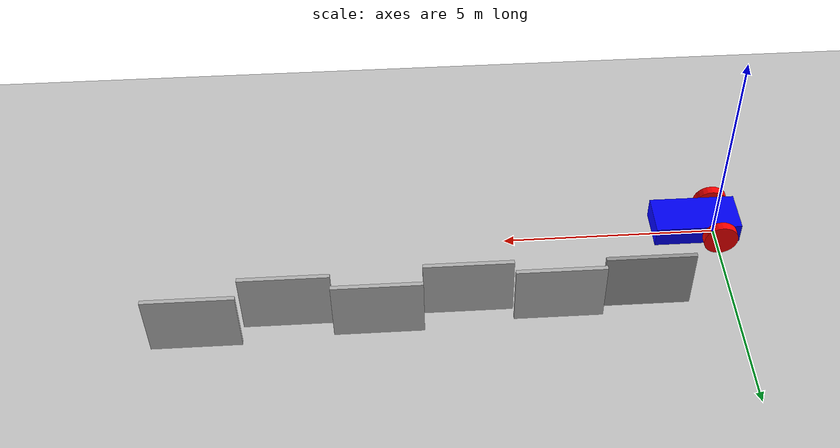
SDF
<?xml version="1.0" ?>
<sdf version="1.8">
    <world name="car_world">
        <physics name="1ms" type="ignored">
            <max_step_size>0.001</max_step_size>
            <real_time_factor>1.0</real_time_factor>
        </physics>
        <plugin
            filename="gz-sim-physics-system"
            name="gz::sim::systems::Physics">
        </plugin>
        <plugin
            filename="gz-sim-user-commands-system"
            name="gz::sim::systems::UserCommands">
        </plugin>
        <plugin
            filename="gz-sim-scene-broadcaster-system"
            name="gz::sim::systems::SceneBroadcaster">
        </plugin>

        <plugin
            filename="gz-sim-sensors-system"
            name="gz::sim::systems::Sensors">
        <render_engine>ogre2</render_engine>
        </plugin>

        <light type="directional" name="sun">
            <cast_shadows>true</cast_shadows>
            <pose>0 0 10 0 0 0</pose>
            <diffuse>0.8 0.8 0.8 1</diffuse>
            <specular>0.2 0.2 0.2 1</specular>
            <attenuation>
                <range>1000</range>
                <constant>0.9</constant>
                <linear>0.01</linear>
                <quadratic>0.001</quadratic>
            </attenuation>
            <direction>-0.5 0.1 -0.9</direction>
        </light>

        <model name="ground_plane">
            <static>true</static>
            <link name="link">
                <collision name="collision">
                <geometry>
                    <plane>
                    <normal>0 0 1</normal>
                    </plane>
                </geometry>
                </collision>
                <visual name="visual">
                <geometry>
                    <plane>
                    <normal>0 0 1</normal>
                    <size>100 100</size>
                    </plane>
                </geometry>
                <material>
                    <ambient>0.8 0.8 0.8 1</ambient>
                    <diffuse>0.8 0.8 0.8 1</diffuse>
                    <specular>0.8 0.8 0.8 1</specular>
                </material>
                </visual>
            </link>
        </model>

        <model name="side_wall">
  <static>true</static>

  <!-- A chain of short wall segments along X with varying Y -> not straight -->
  <!-- Each segment is a box: length in X, thickness in Y, height in Z -->

  <link name="seg_0">
    <pose>  2.0  2.10 0.75 0 0 0</pose>
    <collision name="col">
      <geometry><box><size>2.0 0.10 1.5</size></box></geometry>
    </collision>
    <visual name="vis">
      <geometry><box><size>2.0 0.10 1.5</size></box></geometry>
      <material>
        <ambient>0.6 0.6 0.6 1</ambient>
        <diffuse>0.6 0.6 0.6 1</diffuse>
      </material>
    </visual>
  </link>

  <link name="seg_1">
    <pose>  4.0  2.35 0.75 0 0 0</pose>
    <collision name="col">
      <geometry><box><size>2.0 0.10 1.5</size></box></geometry>
    </collision>
    <visual name="vis">
      <geometry><box><size>2.0 0.10 1.5</size></box></geometry>
    </visual>
  </link>

  <link name="seg_2">
    <pose>  6.0  2.05 0.75 0 0 0</pose>
    <collision name="col">
      <geometry><box><size>2.0 0.10 1.5</size></box></geometry>
    </collision>
    <visual name="vis">
      <geometry><box><size>2.0 0.10 1.5</size></box></geometry>
    </visual>
  </link>

  <link name="seg_3">
    <pose>  8.0  2.55 0.75 0 0 0</pose>
    <collision name="col">
      <geometry><box><size>2.0 0.10 1.5</size></box></geometry>
    </collision>
    <visual name="vis">
      <geometry><box><size>2.0 0.10 1.5</size></box></geometry>
    </visual>
  </link>

  <link name="seg_4">
    <pose> 10.0  2.20 0.75 0 0 0</pose>
    <collision name="col">
      <geometry><box><size>2.0 0.10 1.5</size></box></geometry>
    </collision>
    <visual name="vis">
      <geometry><box><size>2.0 0.10 1.5</size></box></geometry>
    </visual>
  </link>

  <link name="seg_5">
    <pose> 12.0  2.70 0.75 0 0 0</pose>
    <collision name="col">
      <geometry><box><size>2.0 0.10 1.5</size></box></geometry>
    </collision>
    <visual name="vis">
      <geometry><box><size>2.0 0.10 1.5</size></box></geometry>
    </visual>
  </link>

</model>

        <model name='vehicle_blue' canonical_link='chassis'>
            <pose relative_to='world'>0 0 0 0 0 0</pose>   <!--the pose is relative to the world by default-->

            <frame name="lidar_frame" attached_to='chassis'>
            <pose>0.8 0 0.5 0 0 1.5708</pose>
            </frame>

            <!--chassis-->
            <link name='chassis'>
                <pose relative_to='__model__'>0.5 0 0.4 0 0 0</pose>
                <inertial> <!--inertial properties of the link mass, inertia matix-->
                    <mass>1.14395</mass>
                    <inertia>
                        <ixx>0.095329</ixx>
                        <ixy>0</ixy>
                        <ixz>0</ixz>
                        <iyy>0.381317</iyy>
                        <iyz>0</iyz>
                        <izz>0.476646</izz>
                    </inertia>
                </inertial>
                <visual name='visual'>
                    <geometry>
                        <box>
                            <size>2.0 1.0 0.5</size>
                        </box>
                    </geometry>
                    <!--Color of the link-->
                    <material>
                        <ambient>0.0 0.0 1.0 1</ambient>
                        <diffuse>0.0 0.0 1.0 1</diffuse>
                        <specular>0.0 0.0 1.0 1</specular>
                    </material>
                </visual>
                <collision name='collision'>
                    <geometry>
                        <box>
                            <size>2.0 1.0 0.5</size>
                        </box>
                    </geometry>
                </collision>

                <sensor name='gpu_lidar' type='gpu_lidar'>
  <pose relative_to='lidar_frame'>0 0 0 0 0 0</pose>
  <topic>lidar</topic>
  <update_rate>10</update_rate>
  <ray>
    <scan>
      <horizontal>
        <samples>1</samples>
        <resolution>1</resolution>
        <min_angle>0</min_angle>
        <max_angle>0</max_angle>
      </horizontal>
      <vertical>
        <samples>1</samples>
        <resolution>0.01</resolution>
        <min_angle>0</min_angle>
        <max_angle>0</max_angle>
      </vertical>
    </scan>
    <range>
      <min>0.08</min>
      <max>10.0</max>
      <resolution>0.01</resolution>
    </range>
  </ray>
  <always_on>1</always_on>
  <visualize>true</visualize>
</sensor>

            </link>

            <!--Left wheel-->
            <link name='left_wheel'>
                <pose relative_to="chassis">-0.5 0.6 0 -1.5707 0 0</pose> <!--angles are in radian-->
                <inertial>
                    <mass>1</mass>
                    <inertia>
                        <ixx>0.043333</ixx>
                        <ixy>0</ixy>
                        <ixz>0</ixz>
                        <iyy>0.043333</iyy>
                        <iyz>0</iyz>
                        <izz>0.08</izz>
                    </inertia>
                </inertial>
                <visual name='visual'>
                    <geometry>
                        <cylinder>
                            <radius>0.4</radius>
                            <length>0.2</length>
                        </cylinder>
                    </geometry>
                    <material>
                        <ambient>1.0 0.0 0.0 1</ambient>
                        <diffuse>1.0 0.0 0.0 1</diffuse>
                        <specular>1.0 0.0 0.0 1</specular>
                    </material>
                </visual>
                <collision name='collision'>
                    <geometry>
                        <cylinder>
                            <radius>0.4</radius>
                            <length>0.2</length>
                        </cylinder>
                    </geometry>
                </collision>
            </link>

            <!--The same as left wheel but with different position-->
            <link name='right_wheel'>
                <pose relative_to="chassis">-0.5 -0.6 0 -1.5707 0 0</pose> <!--angles are in radian-->
                <inertial>
                    <mass>1</mass>
                    <inertia>
                        <ixx>0.043333</ixx>
                        <ixy>0</ixy>
                        <ixz>0</ixz>
                        <iyy>0.043333</iyy>
                        <iyz>0</iyz>
                        <izz>0.08</izz>
                    </inertia>
                </inertial>
                <visual name='visual'>
                    <geometry>
                        <cylinder>
                            <radius>0.4</radius>
                            <length>0.2</length>
                        </cylinder>
                    </geometry>
                    <material>
                        <ambient>1.0 0.0 0.0 1</ambient>
                        <diffuse>1.0 0.0 0.0 1</diffuse>
                        <specular>1.0 0.0 0.0 1</specular>
                    </material>
                </visual>
                <collision name='collision'>
                    <geometry>
                        <cylinder>
                            <radius>0.4</radius>
                            <length>0.2</length>
                        </cylinder>
                    </geometry>
                </collision>
            </link>

            <!--arbitrary frame-->
            <frame name="caster_frame" attached_to='chassis'>
                <pose>0.8 0 -0.2 0 0 0</pose>
            </frame>

            <!--caster wheel-->
            <link name='caster'>
                <pose relative_to='caster_frame'/>
                <inertial>
                    <mass>1</mass>
                    <inertia>
                        <ixx>0.016</ixx>
                        <ixy>0</ixy>
                        <ixz>0</ixz>
                        <iyy>0.016</iyy>
                        <iyz>0</iyz>
                        <izz>0.016</izz>
                    </inertia>
                </inertial>
                <visual name='visual'>
                    <geometry>
                        <sphere>
                            <radius>0.2</radius>
                        </sphere>
                    </geometry>
                    <material>
                        <ambient>0.0 1 0.0 1</ambient>
                        <diffuse>0.0 1 0.0 1</diffuse>
                        <specular>0.0 1 0.0 1</specular>
                    </material>
                </visual>
                <collision name='collision'>
                    <geometry>
                        <sphere>
                            <radius>0.2</radius>
                        </sphere>
                    </geometry>
                </collision>
            </link>

            <!--left wheel joint-->
            <joint name='left_wheel_joint' type='revolute'>
                <pose relative_to='left_wheel'/>
                <parent>chassis</parent>
                <child>left_wheel</child>
                <axis>
                    <xyz expressed_in='__model__'>0 1 0</xyz> <!--can be descired to any frame or even arbitrary frames-->
                    <limit>
                        <lower>-1.79769e+308</lower>    <!--negative infinity-->
                        <upper>1.79769e+308</upper>     <!--positive infinity-->
                    </limit>
                </axis>
            </joint>

            <!--right wheel joint-->
            <joint name='right_wheel_joint' type='revolute'>
                <pose relative_to='right_wheel'/>
                <parent>chassis</parent>
                <child>right_wheel</child>
                <axis>
                    <xyz expressed_in='__model__'>0 1 0</xyz>
                    <limit>
                        <lower>-1.79769e+308</lower>    <!--negative infinity-->
                        <upper>1.79769e+308</upper>     <!--positive infinity-->
                    </limit>
                </axis>
            </joint>

            <!--caster wheel joint--> <!--pose defult value is the child-->
            <joint name='caster_wheel' type='ball'>
                <parent>chassis</parent>
                <child>caster</child>
            </joint>

            <plugin
                filename="gz-sim-diff-drive-system"
                name="gz::sim::systems::DiffDrive">
                <left_joint>left_wheel_joint</left_joint>
                <right_joint>right_wheel_joint</right_joint>
                <wheel_separation>1.2</wheel_separation>
                <wheel_radius>0.4</wheel_radius>
                <odom_publish_frequency>1</odom_publish_frequency>
                <topic>cmd_vel</topic>
            </plugin>

            <plugin
            name="gz::sim::systems::JointStatePublisher"
            filename="gz-sim-joint-state-publisher-system">
            <publish_rate>50</publish_rate>
            </plugin>

        </model>
    </world>
</sdf>
